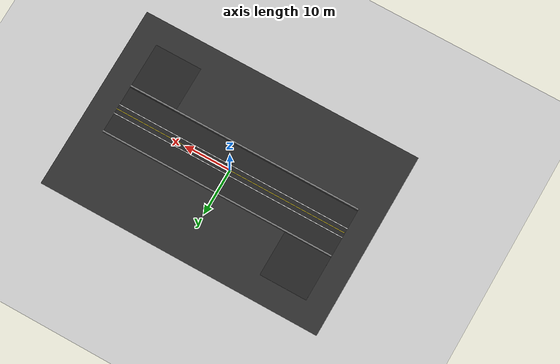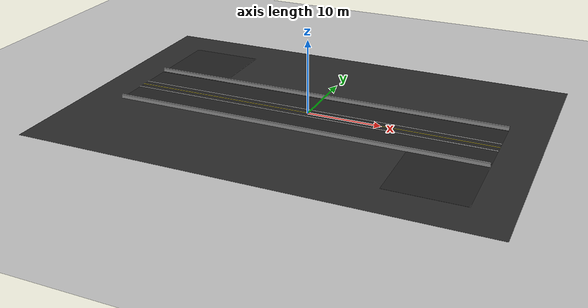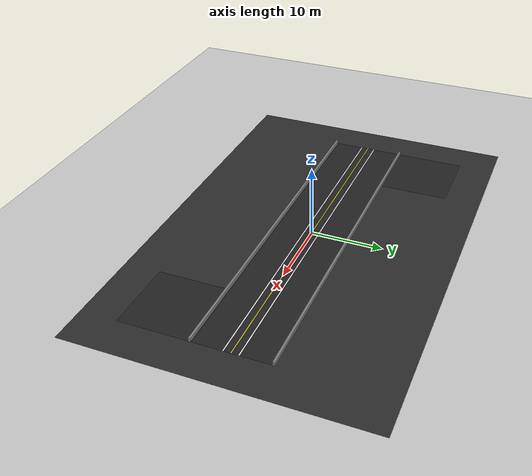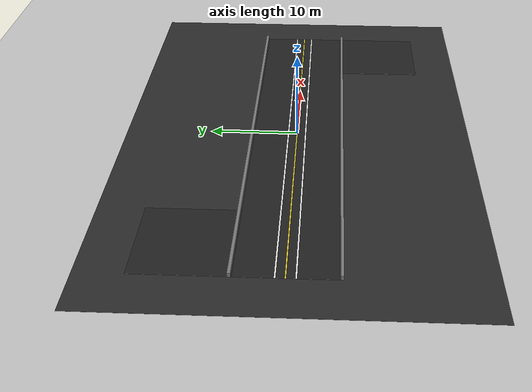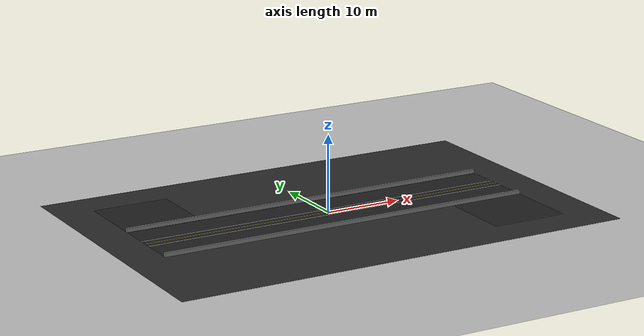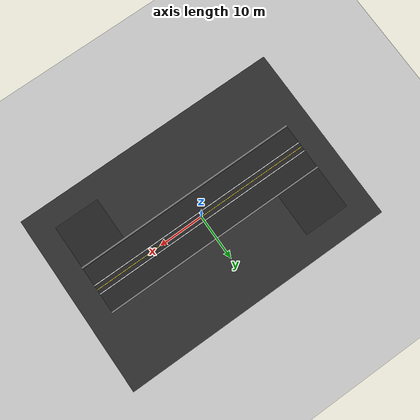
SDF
<sdf version="1.6">
 <world name="blacktrack_light">
  <gravity>0 0 -9.81</gravity>
  <physics type="ode">
   <max_step_size>0.001</max_step_size>
   <real_time_update_rate>1000</real_time_update_rate>
   <real_time_factor>1</real_time_factor>
  </physics>
  <include><uri>model://sun</uri></include>
  <include><uri>model://ground_plane</uri></include>
  <model name="light_track" static="true">
   <link name="asphalt_base">
    <collision name="col">
     <geometry><box><size>60 40 0.02</size></box></geometry>
     <pose>0 0 0.01 0 0 0</pose>
    </collision>
    <visual name="vis">
     <geometry><box><size>60 40 0.02</size></box></geometry>
     <pose>0 0 0.01 0 0 0</pose>
     <material>
      <ambient>0.12 0.12 0.12 1</ambient>
      <diffuse>0.18 0.18 0.18 1</diffuse>
      <specular>0.01 0.01 0.01 1</specular>
     </material>
    </visual>
   </link>
   <link name="main_strip">
    <collision name="col">
     <geometry><box><size>50 10 0.02</size></box></geometry>
     <pose>0 0 0.02 0 0 0</pose>
    </collision>
    <visual name="vis">
     <geometry><box><size>50 10 0.02</size></box></geometry>
     <pose>0 0 0.02 0 0 0</pose>
     <material><ambient>0.10 0.10 0.10 1</ambient><diffuse>0.14 0.14 0.14 1</diffuse></material>
    </visual>
   </link>
   <link name="corner1">
    <collision name="col">
     <geometry><box><size>10 10 0.02</size></box></geometry>
     <pose>-20 10 0.02 0 0 0</pose>
    </collision>
    <visual name="vis">
     <geometry><box><size>10 10 0.02</size></box></geometry>
     <pose>-20 10 0.02 0 0 0</pose>
     <material><ambient>0.10 0.10 0.10 1</ambient><diffuse>0.14 0.14 0.14 1</diffuse></material>
    </visual>
   </link>
   <link name="corner2">
    <collision name="col">
     <geometry><box><size>10 10 0.02</size></box></geometry>
     <pose>20 -10 0.02 0 0 0</pose>
    </collision>
    <visual name="vis">
     <geometry><box><size>10 10 0.02</size></box></geometry>
     <pose>20 -10 0.02 0 0 0</pose>
     <material><ambient>0.10 0.10 0.10 1</ambient><diffuse>0.14 0.14 0.14 1</diffuse></material>
    </visual>
   </link>
   <link name="lane_white_left">
    <collision name="col">
     <geometry><box><size>50 0.15 0.01</size></box></geometry>
     <pose>0 1.0 0.03 0 0 0</pose>
    </collision>
    <visual name="vis">
     <geometry><box><size>50 0.15 0.01</size></box></geometry>
     <pose>0 1.0 0.03 0 0 0</pose>
     <material><ambient>1 1 1 1</ambient><diffuse>1 1 1 1</diffuse></material>
    </visual>
   </link>
   <link name="lane_white_right">
    <collision name="col">
     <geometry><box><size>50 0.15 0.01</size></box></geometry>
     <pose>0 -1.0 0.03 0 0 0</pose>
    </collision>
    <visual name="vis">
     <geometry><box><size>50 0.15 0.01</size></box></geometry>
     <pose>0 -1.0 0.03 0 0 0</pose>
     <material><ambient>1 1 1 1</ambient><diffuse>1 1 1 1</diffuse></material>
    </visual>
   </link>
   <link name="lane_yellow_center">
    <collision name="col">
     <geometry><box><size>50 0.12 0.01</size></box></geometry>
     <pose>0 0 0.031 0 0 0</pose>
    </collision>
    <visual name="vis">
     <geometry><box><size>50 0.12 0.01</size></box></geometry>
     <pose>0 0 0.031 0 0 0</pose>
     <material><ambient>1.0 0.9 0.15 1</ambient><diffuse>1.0 0.9 0.15 1</diffuse></material>
    </visual>
   </link>
   <link name="wall_left">
    <collision name="col">
     <geometry><box><size>50 0.3 0.5</size></box></geometry>
     <pose>0 5.25 0.26 0 0 0</pose>
    </collision>
    <visual name="vis">
     <geometry><box><size>50 0.3 0.5</size></box></geometry>
     <pose>0 5.25 0.26 0 0 0</pose>
     <material><ambient>0.4 0.4 0.4 1</ambient><diffuse>0.5 0.5 0.5 1</diffuse></material>
    </visual>
   </link>
   <link name="wall_right">
    <collision name="col">
     <geometry><box><size>50 0.3 0.5</size></box></geometry>
     <pose>0 -5.25 0.26 0 0 0</pose>
    </collision>
    <visual name="vis">
     <geometry><box><size>50 0.3 0.5</size></box></geometry>
     <pose>0 -5.25 0.26 0 0 0</pose>
     <material><ambient>0.4 0.4 0.4 1</ambient><diffuse>0.5 0.5 0.5 1</diffuse></material>
    </visual>
   </link>
  </model>
 </world>
</sdf>
